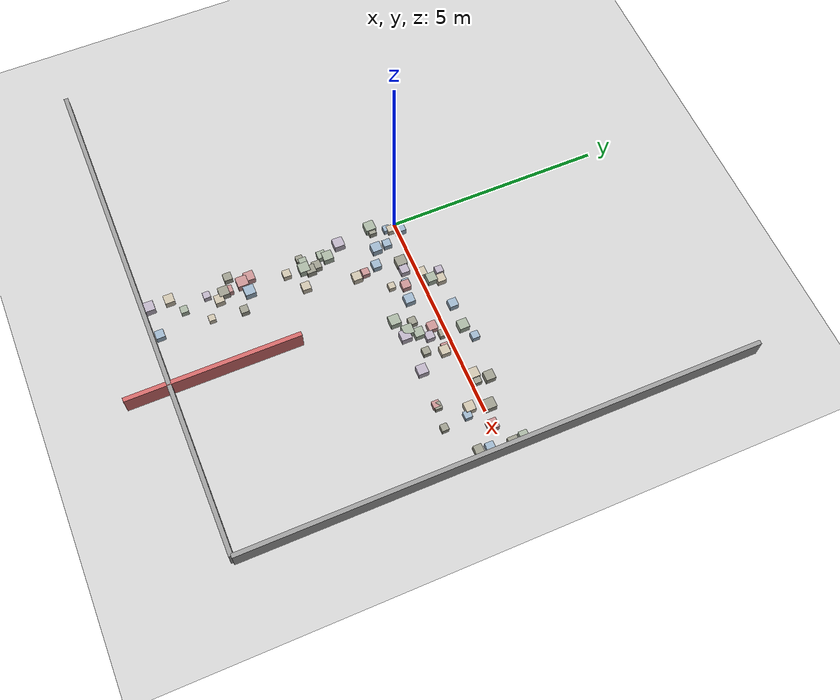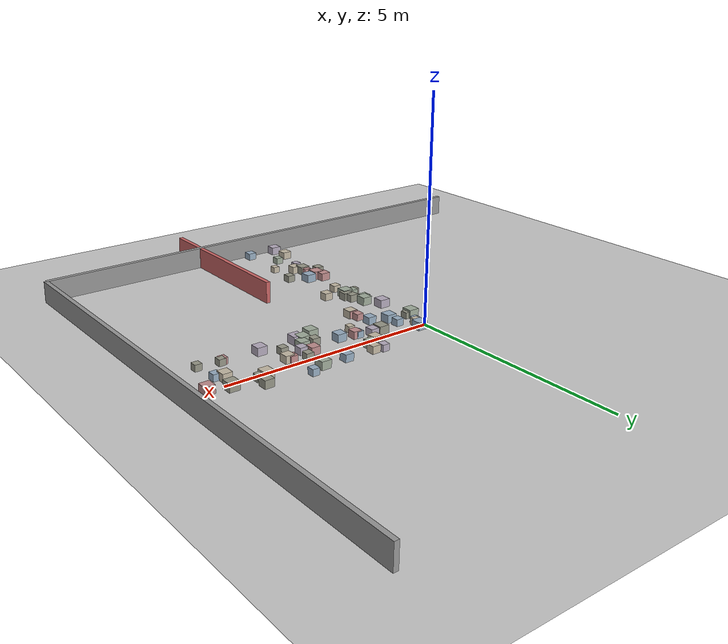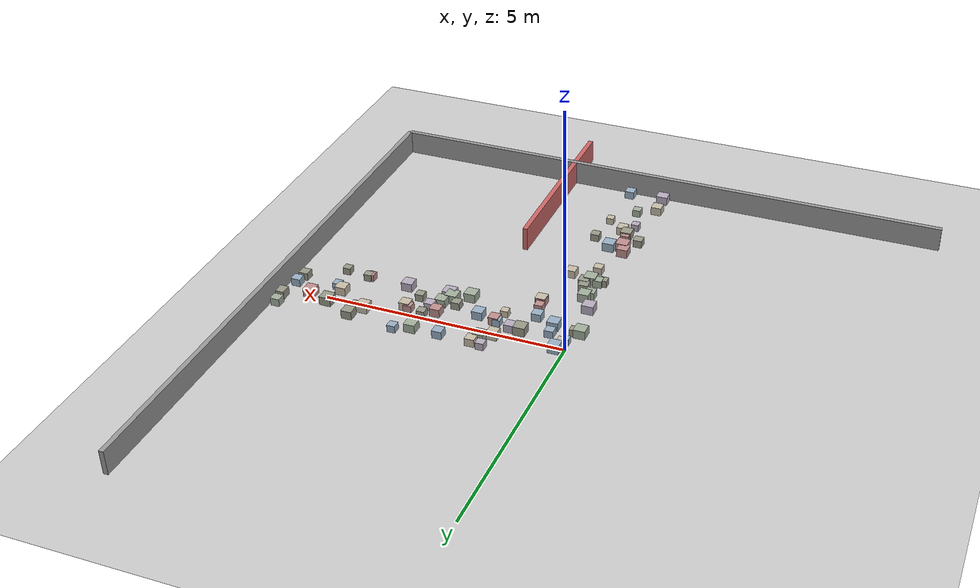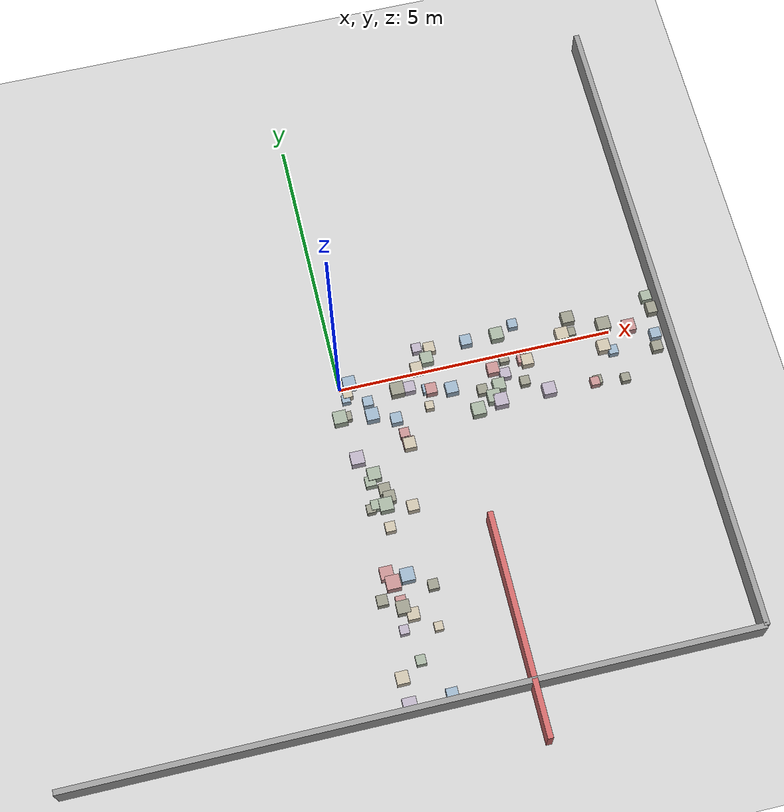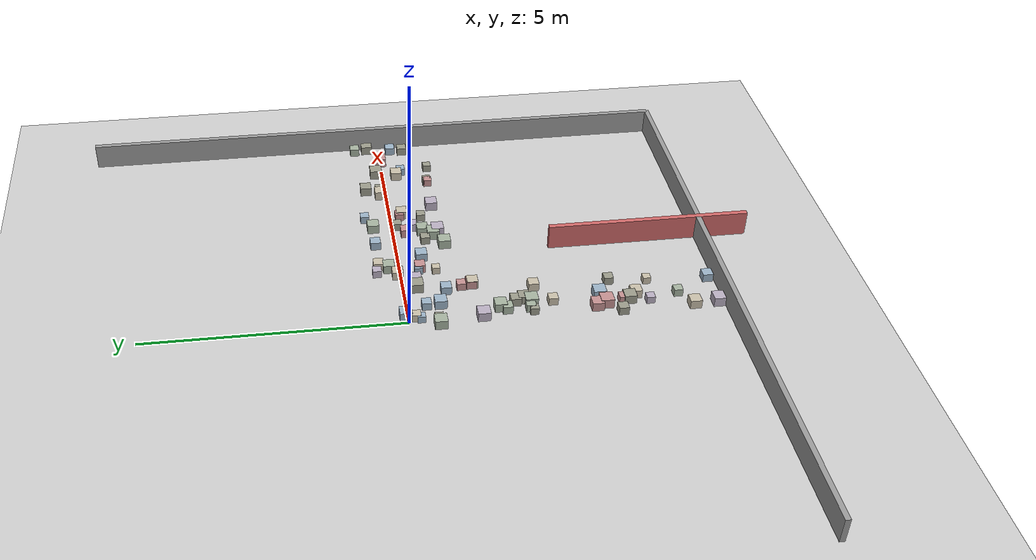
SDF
<sdf version="1.6">
 <world name="small_maze_world">
  <include><uri>model://ground_plane</uri></include>
  <include><uri>model://sun</uri></include>
  <model name="wall_south">
   <static>true</static>
   <pose>0 -6 0.25 0 0 0</pose>
   <link name="link">
    <collision name="collision"><geometry><box><size>12 0.1 0.5</size></box></geometry></collision>
    <visual name="visual">
     <geometry><box><size>12 0.1 0.5</size></box></geometry>
     <material><ambient>0.6 0.6 0.6 1</ambient></material>
    </visual>
   </link>
  </model>
  <model name="wall_east">
   <static>true</static>
   <pose>6 0 0.25 0 0 0</pose>
   <link name="link">
    <collision name="collision"><geometry><box><size>0.1 12 0.5</size></box></geometry></collision>
    <visual name="visual">
     <geometry><box><size>0.1 12 0.5</size></box></geometry>
     <material><ambient>0.6 0.6 0.6 1</ambient></material>
    </visual>
   </link>
  </model>
  <model name="maze_wall_2">
   <static>true</static>
   <pose>2 -5 0.25 0 0 1.5708</pose>
   <link name="link">
    <collision name="collision"><geometry><box><size>4 0.1 0.5</size></box></geometry></collision>
    <visual name="visual">
     <geometry><box><size>4 0.1 0.5</size></box></geometry>
     <material><ambient>0.8 0.4 0.4 1</ambient></material>
    </visual>
   </link>
  </model>
  <model name="box_1">
   <static>false</static>
   <pose>2.75 -0.89 0.05 0 0 0</pose>
   <link name="link">
    <inertial>
     <mass>0.2</mass>
     <inertia><ixx>0.001</ixx><iyy>0.001</iyy><izz>0.001</izz><ixy>0</ixy><ixz>0</ixz><iyz>0</iyz></inertia>
    </inertial>
    <collision name="collision"><geometry><box><size>0.24 0.24 0.24</size></box></geometry></collision>
    <visual name="visual">
     <geometry><box><size>0.24 0.24 0.24</size></box></geometry>
     <material><ambient>0.72 0.68 0.75 1</ambient><diffuse>0.72 0.68 0.75 1</diffuse></material>
    </visual>
   </link>
  </model>
  <model name="box_9">
   <static>false</static>
   <pose>0.94 -1.1 0.05 0 0 0</pose>
   <link name="link">
    <inertial>
     <mass>0.2</mass>
     <inertia><ixx>0.001</ixx><iyy>0.001</iyy><izz>0.001</izz><ixy>0</ixy><ixz>0</ixz><iyz>0</iyz></inertia>
    </inertial>
    <collision name="collision"><geometry><box><size>0.17 0.17 0.17</size></box></geometry></collision>
    <visual name="visual">
     <geometry><box><size>0.17 0.17 0.17</size></box></geometry>
     <material><ambient>0.76 0.56 0.56 1</ambient><diffuse>0.76 0.56 0.56 1</diffuse></material>
    </visual>
   </link>
  </model>
  <model name="box_26">
   <static>false</static>
   <pose>0.33 -4.35 0.05 0 0 0</pose>
   <link name="link">
    <inertial>
     <mass>0.2</mass>
     <inertia><ixx>0.001</ixx><iyy>0.001</iyy><izz>0.001</izz><ixy>0</ixy><ixz>0</ixz><iyz>0</iyz></inertia>
    </inertial>
    <collision name="collision"><geometry><box><size>0.21 0.21 0.21</size></box></geometry></collision>
    <visual name="visual">
     <geometry><box><size>0.21 0.21 0.21</size></box></geometry>
     <material><ambient>0.78 0.74 0.66 1</ambient><diffuse>0.78 0.74 0.66 1</diffuse></material>
    </visual>
   </link>
  </model>
  <model name="box_27">
   <static>false</static>
   <pose>1.65 0.21 0.05 0 0 0</pose>
   <link name="link">
    <inertial>
     <mass>0.2</mass>
     <inertia><ixx>0.001</ixx><iyy>0.001</iyy><izz>0.001</izz><ixy>0</ixy><ixz>0</ixz><iyz>0</iyz></inertia>
    </inertial>
    <collision name="collision"><geometry><box><size>0.22 0.22 0.22</size></box></geometry></collision>
    <visual name="visual">
     <geometry><box><size>0.22 0.22 0.22</size></box></geometry>
     <material><ambient>0.64 0.69 0.62 1</ambient><diffuse>0.64 0.69 0.62 1</diffuse></material>
    </visual>
   </link>
  </model>
  <model name="box_29">
   <static>false</static>
   <pose>3.26 -0.62 0.05 0 0 0</pose>
   <link name="link">
    <inertial>
     <mass>0.2</mass>
     <inertia><ixx>0.001</ixx><iyy>0.001</iyy><izz>0.001</izz><ixy>0</ixy><ixz>0</ixz><iyz>0</iyz></inertia>
    </inertial>
    <collision name="collision"><geometry><box><size>0.17 0.17 0.17</size></box></geometry></collision>
    <visual name="visual">
     <geometry><box><size>0.17 0.17 0.17</size></box></geometry>
     <material><ambient>0.6 0.6 0.54 1</ambient><diffuse>0.6 0.6 0.54 1</diffuse></material>
    </visual>
   </link>
  </model>
  <model name="box_59">
   <static>false</static>
   <pose>4.53 -0.9 0.05 0 0 0</pose>
   <link name="link">
    <inertial>
     <mass>0.2</mass>
     <inertia><ixx>0.001</ixx><iyy>0.001</iyy><izz>0.001</izz><ixy>0</ixy><ixz>0</ixz><iyz>0</iyz></inertia>
    </inertial>
    <collision name="collision"><geometry><box><size>0.16 0.16 0.16</size></box></geometry></collision>
    <visual name="visual">
     <geometry><box><size>0.16 0.16 0.16</size></box></geometry>
     <material><ambient>0.6 0.6 0.54 1</ambient><diffuse>0.6 0.6 0.54 1</diffuse></material>
    </visual>
   </link>
  </model>
  <model name="box_63">
   <static>false</static>
   <pose>2.99 0.38 0.05 0 0 0</pose>
   <link name="link">
    <inertial>
     <mass>0.2</mass>
     <inertia><ixx>0.001</ixx><iyy>0.001</iyy><izz>0.001</izz><ixy>0</ixy><ixz>0</ixz><iyz>0</iyz></inertia>
    </inertial>
    <collision name="collision"><geometry><box><size>0.23 0.23 0.23</size></box></geometry></collision>
    <visual name="visual">
     <geometry><box><size>0.23 0.23 0.23</size></box></geometry>
     <material><ambient>0.64 0.69 0.62 1</ambient><diffuse>0.64 0.69 0.62 1</diffuse></material>
    </visual>
   </link>
  </model>
  <model name="box_72">
   <static>false</static>
   <pose>2.65 -0.79 0.05 0 0 0</pose>
   <link name="link">
    <inertial>
     <mass>0.2</mass>
     <inertia><ixx>0.001</ixx><iyy>0.001</iyy><izz>0.001</izz><ixy>0</ixy><ixz>0</ixz><iyz>0</iyz></inertia>
    </inertial>
    <collision name="collision"><geometry><box><size>0.24 0.24 0.24</size></box></geometry></collision>
    <visual name="visual">
     <geometry><box><size>0.24 0.24 0.24</size></box></geometry>
     <material><ambient>0.64 0.69 0.62 1</ambient><diffuse>0.64 0.69 0.62 1</diffuse></material>
    </visual>
   </link>
  </model>
  <model name="box_73">
   <static>false</static>
   <pose>0.65 -5.83 0.05 0 0 0</pose>
   <link name="link">
    <inertial>
     <mass>0.2</mass>
     <inertia><ixx>0.001</ixx><iyy>0.001</iyy><izz>0.001</izz><ixy>0</ixy><ixz>0</ixz><iyz>0</iyz></inertia>
    </inertial>
    <collision name="collision"><geometry><box><size>0.2 0.2 0.2</size></box></geometry></collision>
    <visual name="visual">
     <geometry><box><size>0.2 0.2 0.2</size></box></geometry>
     <material><ambient>0.6 0.69 0.77 1</ambient><diffuse>0.6 0.69 0.77 1</diffuse></material>
    </visual>
   </link>
  </model>
  <model name="box_89">
   <static>false</static>
   <pose>2.79 -0.59 0.05 0 0 0</pose>
   <link name="link">
    <inertial>
     <mass>0.2</mass>
     <inertia><ixx>0.001</ixx><iyy>0.001</iyy><izz>0.001</izz><ixy>0</ixy><ixz>0</ixz><iyz>0</iyz></inertia>
    </inertial>
    <collision name="collision"><geometry><box><size>0.22 0.22 0.22</size></box></geometry></collision>
    <visual name="visual">
     <geometry><box><size>0.22 0.22 0.22</size></box></geometry>
     <material><ambient>0.64 0.69 0.62 1</ambient><diffuse>0.64 0.69 0.62 1</diffuse></material>
    </visual>
   </link>
  </model>
  <model name="box_90">
   <static>false</static>
   <pose>0.07 -0.23 0.05 0 0 0</pose>
   <link name="link">
    <inertial>
     <mass>0.2</mass>
     <inertia><ixx>0.001</ixx><iyy>0.001</iyy><izz>0.001</izz><ixy>0</ixy><ixz>0</ixz><iyz>0</iyz></inertia>
    </inertial>
    <collision name="collision"><geometry><box><size>0.15 0.15 0.15</size></box></geometry></collision>
    <visual name="visual">
     <geometry><box><size>0.15 0.15 0.15</size></box></geometry>
     <material><ambient>0.6 0.69 0.77 1</ambient><diffuse>0.6 0.69 0.77 1</diffuse></material>
    </visual>
   </link>
  </model>
  <model name="box_93">
   <static>false</static>
   <pose>0.7 -4.65 0.05 0 0 0</pose>
   <link name="link">
    <inertial>
     <mass>0.2</mass>
     <inertia><ixx>0.001</ixx><iyy>0.001</iyy><izz>0.001</izz><ixy>0</ixy><ixz>0</ixz><iyz>0</iyz></inertia>
    </inertial>
    <collision name="collision"><geometry><box><size>0.15 0.15 0.15</size></box></geometry></collision>
    <visual name="visual">
     <geometry><box><size>0.15 0.15 0.15</size></box></geometry>
     <material><ambient>0.78 0.74 0.66 1</ambient><diffuse>0.78 0.74 0.66 1</diffuse></material>
    </visual>
   </link>
  </model>
  <model name="box_104">
   <static>false</static>
   <pose>5.75 -0.51 0.05 0 0 0</pose>
   <link name="link">
    <inertial>
     <mass>0.2</mass>
     <inertia><ixx>0.001</ixx><iyy>0.001</iyy><izz>0.001</izz><ixy>0</ixy><ixz>0</ixz><iyz>0</iyz></inertia>
    </inertial>
    <collision name="collision"><geometry><box><size>0.19 0.19 0.19</size></box></geometry></collision>
    <visual name="visual">
     <geometry><box><size>0.19 0.19 0.19</size></box></geometry>
     <material><ambient>0.6 0.6 0.54 1</ambient><diffuse>0.6 0.6 0.54 1</diffuse></material>
    </visual>
   </link>
  </model>
  <model name="box_106">
   <static>false</static>
   <pose>0.15 -1.86 0.05 0 0 0</pose>
   <link name="link">
    <inertial>
     <mass>0.2</mass>
     <inertia><ixx>0.001</ixx><iyy>0.001</iyy><izz>0.001</izz><ixy>0</ixy><ixz>0</ixz><iyz>0</iyz></inertia>
    </inertial>
    <collision name="collision"><geometry><box><size>0.19 0.19 0.19</size></box></geometry></collision>
    <visual name="visual">
     <geometry><box><size>0.19 0.19 0.19</size></box></geometry>
     <material><ambient>0.64 0.69 0.62 1</ambient><diffuse>0.64 0.69 0.62 1</diffuse></material>
    </visual>
   </link>
  </model>
  <model name="box_116">
   <static>false</static>
   <pose>0.27 -5.15 0.05 0 0 0</pose>
   <link name="link">
    <inertial>
     <mass>0.2</mass>
     <inertia><ixx>0.001</ixx><iyy>0.001</iyy><izz>0.001</izz><ixy>0</ixy><ixz>0</ixz><iyz>0</iyz></inertia>
    </inertial>
    <collision name="collision"><geometry><box><size>0.17 0.17 0.17</size></box></geometry></collision>
    <visual name="visual">
     <geometry><box><size>0.17 0.17 0.17</size></box></geometry>
     <material><ambient>0.64 0.69 0.62 1</ambient><diffuse>0.64 0.69 0.62 1</diffuse></material>
    </visual>
   </link>
  </model>
  <model name="box_117">
   <static>false</static>
   <pose>2.76 -0.26 0.05 0 0 0</pose>
   <link name="link">
    <inertial>
     <mass>0.2</mass>
     <inertia><ixx>0.001</ixx><iyy>0.001</iyy><izz>0.001</izz><ixy>0</ixy><ixz>0</ixz><iyz>0</iyz></inertia>
    </inertial>
    <collision name="collision"><geometry><box><size>0.21 0.21 0.21</size></box></geometry></collision>
    <visual name="visual">
     <geometry><box><size>0.21 0.21 0.21</size></box></geometry>
     <material><ambient>0.76 0.56 0.56 1</ambient><diffuse>0.76 0.56 0.56 1</diffuse></material>
    </visual>
   </link>
  </model>
  <model name="box_119">
   <static>false</static>
   <pose>4.14 0.11 0.05 0 0 0</pose>
   <link name="link">
    <inertial>
     <mass>0.2</mass>
     <inertia><ixx>0.001</ixx><iyy>0.001</iyy><izz>0.001</izz><ixy>0</ixy><ixz>0</ixz><iyz>0</iyz></inertia>
    </inertial>
    <collision name="collision"><geometry><box><size>0.23 0.23 0.23</size></box></geometry></collision>
    <visual name="visual">
     <geometry><box><size>0.23 0.23 0.23</size></box></geometry>
     <material><ambient>0.78 0.74 0.66 1</ambient><diffuse>0.78 0.74 0.66 1</diffuse></material>
    </visual>
   </link>
  </model>
  <model name="box_121">
   <static>false</static>
   <pose>3.32 0.52 0.05 0 0 0</pose>
   <link name="link">
    <inertial>
     <mass>0.2</mass>
     <inertia><ixx>0.001</ixx><iyy>0.001</iyy><izz>0.001</izz><ixy>0</ixy><ixz>0</ixz><iyz>0</iyz></inertia>
    </inertial>
    <collision name="collision"><geometry><box><size>0.17 0.17 0.17</size></box></geometry></collision>
    <visual name="visual">
     <geometry><box><size>0.17 0.17 0.17</size></box></geometry>
     <material><ambient>0.6 0.69 0.77 1</ambient><diffuse>0.6 0.69 0.77 1</diffuse></material>
    </visual>
   </link>
  </model>
  <model name="box_123">
   <static>false</static>
   <pose>0.15 -2.3 0.05 0 0 0</pose>
   <link name="link">
    <inertial>
     <mass>0.2</mass>
     <inertia><ixx>0.001</ixx><iyy>0.001</iyy><izz>0.001</izz><ixy>0</ixy><ixz>0</ixz><iyz>0</iyz></inertia>
    </inertial>
    <collision name="collision"><geometry><box><size>0.18 0.18 0.18</size></box></geometry></collision>
    <visual name="visual">
     <geometry><box><size>0.18 0.18 0.18</size></box></geometry>
     <material><ambient>0.64 0.69 0.62 1</ambient><diffuse>0.64 0.69 0.62 1</diffuse></material>
    </visual>
   </link>
  </model>
  <model name="box_125">
   <static>false</static>
   <pose>3.32 -0.19 0.05 0 0 0</pose>
   <link name="link">
    <inertial>
     <mass>0.2</mass>
     <inertia><ixx>0.001</ixx><iyy>0.001</iyy><izz>0.001</izz><ixy>0</ixy><ixz>0</ixz><iyz>0</iyz></inertia>
    </inertial>
    <collision name="collision"><geometry><box><size>0.17 0.17 0.17</size></box></geometry></collision>
    <visual name="visual">
     <geometry><box><size>0.17 0.17 0.17</size></box></geometry>
     <material><ambient>0.76 0.56 0.56 1</ambient><diffuse>0.76 0.56 0.56 1</diffuse></material>
    </visual>
   </link>
  </model>
  <model name="box_129">
   <static>false</static>
   <pose>-0.1 -5.38 0.05 0 0 0</pose>
   <link name="link">
    <inertial>
     <mass>0.2</mass>
     <inertia><ixx>0.001</ixx><iyy>0.001</iyy><izz>0.001</izz><ixy>0</ixy><ixz>0</ixz><iyz>0</iyz></inertia>
    </inertial>
    <collision name="collision"><geometry><box><size>0.22 0.22 0.22</size></box></geometry></collision>
    <visual name="visual">
     <geometry><box><size>0.22 0.22 0.22</size></box></geometry>
     <material><ambient>0.78 0.74 0.66 1</ambient><diffuse>0.78 0.74 0.66 1</diffuse></material>
    </visual>
   </link>
  </model>
  <model name="box_141">
   <static>false</static>
   <pose>0.98 -1.32 0.05 0 0 0</pose>
   <link name="link">
    <inertial>
     <mass>0.2</mass>
     <inertia><ixx>0.001</ixx><iyy>0.001</iyy><izz>0.001</izz><ixy>0</ixy><ixz>0</ixz><iyz>0</iyz></inertia>
    </inertial>
    <collision name="collision"><geometry><box><size>0.21 0.21 0.21</size></box></geometry></collision>
    <visual name="visual">
     <geometry><box><size>0.21 0.21 0.21</size></box></geometry>
     <material><ambient>0.78 0.74 0.66 1</ambient><diffuse>0.78 0.74 0.66 1</diffuse></material>
    </visual>
   </link>
  </model>
  <model name="box_150">
   <static>false</static>
   <pose>5.83 0.5 0.05 0 0 0</pose>
   <link name="link">
    <inertial>
     <mass>0.2</mass>
     <inertia><ixx>0.001</ixx><iyy>0.001</iyy><izz>0.001</izz><ixy>0</ixy><ixz>0</ixz><iyz>0</iyz></inertia>
    </inertial>
    <collision name="collision"><geometry><box><size>0.19 0.19 0.19</size></box></geometry></collision>
    <visual name="visual">
     <geometry><box><size>0.19 0.19 0.19</size></box></geometry>
     <material><ambient>0.64 0.69 0.62 1</ambient><diffuse>0.64 0.69 0.62 1</diffuse></material>
    </visual>
   </link>
  </model>
  <model name="box_162">
   <static>false</static>
   <pose>3.4 -0.24 0.05 0 0 0</pose>
   <link name="link">
    <inertial>
     <mass>0.2</mass>
     <inertia><ixx>0.001</ixx><iyy>0.001</iyy><izz>0.001</izz><ixy>0</ixy><ixz>0</ixz><iyz>0</iyz></inertia>
    </inertial>
    <collision name="collision"><geometry><box><size>0.21 0.21 0.21</size></box></geometry></collision>
    <visual name="visual">
     <geometry><box><size>0.21 0.21 0.21</size></box></geometry>
     <material><ambient>0.78 0.74 0.66 1</ambient><diffuse>0.78 0.74 0.66 1</diffuse></material>
    </visual>
   </link>
  </model>
  <model name="box_165">
   <static>false</static>
   <pose>-0.08 -5.85 0.05 0 0 0</pose>
   <link name="link">
    <inertial>
     <mass>0.2</mass>
     <inertia><ixx>0.001</ixx><iyy>0.001</iyy><izz>0.001</izz><ixy>0</ixy><ixz>0</ixz><iyz>0</iyz></inertia>
    </inertial>
    <collision name="collision"><geometry><box><size>0.24 0.24 0.24</size></box></geometry></collision>
    <visual name="visual">
     <geometry><box><size>0.24 0.24 0.24</size></box></geometry>
     <material><ambient>0.72 0.68 0.75 1</ambient><diffuse>0.72 0.68 0.75 1</diffuse></material>
    </visual>
   </link>
  </model>
  <model name="box_176">
   <static>false</static>
   <pose>1.0 -0.26 0.05 0 0 0</pose>
   <link name="link">
    <inertial>
     <mass>0.2</mass>
     <inertia><ixx>0.001</ixx><iyy>0.001</iyy><izz>0.001</izz><ixy>0</ixy><ixz>0</ixz><iyz>0</iyz></inertia>
    </inertial>
    <collision name="collision"><geometry><box><size>0.24 0.24 0.24</size></box></geometry></collision>
    <visual name="visual">
     <geometry><box><size>0.24 0.24 0.24</size></box></geometry>
     <material><ambient>0.6 0.6 0.54 1</ambient><diffuse>0.6 0.6 0.54 1</diffuse></material>
    </visual>
   </link>
  </model>
  <model name="box_177">
   <static>false</static>
   <pose>-0.13 -4.0 0.05 0 0 0</pose>
   <link name="link">
    <inertial>
     <mass>0.2</mass>
     <inertia><ixx>0.001</ixx><iyy>0.001</iyy><izz>0.001</izz><ixy>0</ixy><ixz>0</ixz><iyz>0</iyz></inertia>
    </inertial>
    <collision name="collision"><geometry><box><size>0.19 0.19 0.19</size></box></geometry></collision>
    <visual name="visual">
     <geometry><box><size>0.19 0.19 0.19</size></box></geometry>
     <material><ambient>0.6 0.6 0.54 1</ambient><diffuse>0.6 0.6 0.54 1</diffuse></material>
    </visual>
   </link>
  </model>
  <model name="box_183">
   <static>false</static>
   <pose>1.43 0.06 0.05 0 0 0</pose>
   <link name="link">
    <inertial>
     <mass>0.2</mass>
     <inertia><ixx>0.001</ixx><iyy>0.001</iyy><izz>0.001</izz><ixy>0</ixy><ixz>0</ixz><iyz>0</iyz></inertia>
    </inertial>
    <collision name="collision"><geometry><box><size>0.21 0.21 0.21</size></box></geometry></collision>
    <visual name="visual">
     <geometry><box><size>0.21 0.21 0.21</size></box></geometry>
     <material><ambient>0.78 0.74 0.66 1</ambient><diffuse>0.78 0.74 0.66 1</diffuse></material>
    </visual>
   </link>
  </model>
  <model name="box_184">
   <static>false</static>
   <pose>2.48 -0.61 0.05 0 0 0</pose>
   <link name="link">
    <inertial>
     <mass>0.2</mass>
     <inertia><ixx>0.001</ixx><iyy>0.001</iyy><izz>0.001</izz><ixy>0</ixy><ixz>0</ixz><iyz>0</iyz></inertia>
    </inertial>
    <collision name="collision"><geometry><box><size>0.18 0.18 0.18</size></box></geometry></collision>
    <visual name="visual">
     <geometry><box><size>0.18 0.18 0.18</size></box></geometry>
     <material><ambient>0.6 0.6 0.54 1</ambient><diffuse>0.6 0.6 0.54 1</diffuse></material>
    </visual>
   </link>
  </model>
  <model name="box_190">
   <static>false</static>
   <pose>0.02 -1.39 0.05 0 0 0</pose>
   <link name="link">
    <inertial>
     <mass>0.2</mass>
     <inertia><ixx>0.001</ixx><iyy>0.001</iyy><izz>0.001</izz><ixy>0</ixy><ixz>0</ixz><iyz>0</iyz></inertia>
    </inertial>
    <collision name="collision"><geometry><box><size>0.24 0.24 0.24</size></box></geometry></collision>
    <visual name="visual">
     <geometry><box><size>0.24 0.24 0.24</size></box></geometry>
     <material><ambient>0.72 0.68 0.75 1</ambient><diffuse>0.72 0.68 0.75 1</diffuse></material>
    </visual>
   </link>
  </model>
  <model name="box_192">
   <static>false</static>
   <pose>0.77 -2.46 0.05 0 0 0</pose>
   <link name="link">
    <inertial>
     <mass>0.2</mass>
     <inertia><ixx>0.001</ixx><iyy>0.001</iyy><izz>0.001</izz><ixy>0</ixy><ixz>0</ixz><iyz>0</iyz></inertia>
    </inertial>
    <collision name="collision"><geometry><box><size>0.2 0.2 0.2</size></box></geometry></collision>
    <visual name="visual">
     <geometry><box><size>0.2 0.2 0.2</size></box></geometry>
     <material><ambient>0.78 0.74 0.66 1</ambient><diffuse>0.78 0.74 0.66 1</diffuse></material>
    </visual>
   </link>
  </model>
  <model name="box_194">
   <static>false</static>
   <pose>0.18 -4.08 0.05 0 0 0</pose>
   <link name="link">
    <inertial>
     <mass>0.2</mass>
     <inertia><ixx>0.001</ixx><iyy>0.001</iyy><izz>0.001</izz><ixy>0</ixy><ixz>0</ixz><iyz>0</iyz></inertia>
    </inertial>
    <collision name="collision"><geometry><box><size>0.18 0.18 0.18</size></box></geometry></collision>
    <visual name="visual">
     <geometry><box><size>0.18 0.18 0.18</size></box></geometry>
     <material><ambient>0.76 0.56 0.56 1</ambient><diffuse>0.76 0.56 0.56 1</diffuse></material>
    </visual>
   </link>
  </model>
  <model name="box_222">
   <static>false</static>
   <pose>0.3 -2.75 0.05 0 0 0</pose>
   <link name="link">
    <inertial>
     <mass>0.2</mass>
     <inertia><ixx>0.001</ixx><iyy>0.001</iyy><izz>0.001</izz><ixy>0</ixy><ixz>0</ixz><iyz>0</iyz></inertia>
    </inertial>
    <collision name="collision"><geometry><box><size>0.18 0.18 0.18</size></box></geometry></collision>
    <visual name="visual">
     <geometry><box><size>0.18 0.18 0.18</size></box></geometry>
     <material><ambient>0.78 0.74 0.66 1</ambient><diffuse>0.78 0.74 0.66 1</diffuse></material>
    </visual>
   </link>
  </model>
  <model name="box_225">
   <static>false</static>
   <pose>0.44 -0.37 0.05 0 0 0</pose>
   <link name="link">
    <inertial>
     <mass>0.2</mass>
     <inertia><ixx>0.001</ixx><iyy>0.001</iyy><izz>0.001</izz><ixy>0</ixy><ixz>0</ixz><iyz>0</iyz></inertia>
    </inertial>
    <collision name="collision"><geometry><box><size>0.18 0.18 0.18</size></box></geometry></collision>
    <visual name="visual">
     <geometry><box><size>0.18 0.18 0.18</size></box></geometry>
     <material><ambient>0.6 0.69 0.77 1</ambient><diffuse>0.6 0.69 0.77 1</diffuse></material>
    </visual>
   </link>
  </model>
  <model name="box_239">
   <static>false</static>
   <pose>4.81 -0.29 0.05 0 0 0</pose>
   <link name="link">
    <inertial>
     <mass>0.2</mass>
     <inertia><ixx>0.001</ixx><iyy>0.001</iyy><izz>0.001</izz><ixy>0</ixy><ixz>0</ixz><iyz>0</iyz></inertia>
    </inertial>
    <collision name="collision"><geometry><box><size>0.22 0.22 0.22</size></box></geometry></collision>
    <visual name="visual">
     <geometry><box><size>0.22 0.22 0.22</size></box></geometry>
     <material><ambient>0.78 0.74 0.66 1</ambient><diffuse>0.78 0.74 0.66 1</diffuse></material>
    </visual>
   </link>
  </model>
  <model name="box_244">
   <static>false</static>
   <pose>0.78 -3.92 0.05 0 0 0</pose>
   <link name="link">
    <inertial>
     <mass>0.2</mass>
     <inertia><ixx>0.001</ixx><iyy>0.001</iyy><izz>0.001</izz><ixy>0</ixy><ixz>0</ixz><iyz>0</iyz></inertia>
    </inertial>
    <collision name="collision"><geometry><box><size>0.18 0.18 0.18</size></box></geometry></collision>
    <visual name="visual">
     <geometry><box><size>0.18 0.18 0.18</size></box></geometry>
     <material><ambient>0.6 0.6 0.54 1</ambient><diffuse>0.6 0.6 0.54 1</diffuse></material>
    </visual>
   </link>
  </model>
  <model name="box_254">
   <static>false</static>
   <pose>0.12 -3.74 0.05 0 0 0</pose>
   <link name="link">
    <inertial>
     <mass>0.2</mass>
     <inertia><ixx>0.001</ixx><iyy>0.001</iyy><izz>0.001</izz><ixy>0</ixy><ixz>0</ixz><iyz>0</iyz></inertia>
    </inertial>
    <collision name="collision"><geometry><box><size>0.25 0.25 0.25</size></box></geometry></collision>
    <visual name="visual">
     <geometry><box><size>0.25 0.25 0.25</size></box></geometry>
     <material><ambient>0.76 0.56 0.56 1</ambient><diffuse>0.76 0.56 0.56 1</diffuse></material>
    </visual>
   </link>
  </model>
  <model name="box_256">
   <static>false</static>
   <pose>1.59 -0.39 0.05 0 0 0</pose>
   <link name="link">
    <inertial>
     <mass>0.2</mass>
     <inertia><ixx>0.001</ixx><iyy>0.001</iyy><izz>0.001</izz><ixy>0</ixy><ixz>0</ixz><iyz>0</iyz></inertia>
    </inertial>
    <collision name="collision"><geometry><box><size>0.2 0.2 0.2</size></box></geometry></collision>
    <visual name="visual">
     <geometry><box><size>0.2 0.2 0.2</size></box></geometry>
     <material><ambient>0.76 0.56 0.56 1</ambient><diffuse>0.76 0.56 0.56 1</diffuse></material>
    </visual>
   </link>
  </model>
  <model name="box_259">
   <static>false</static>
   <pose>4.32 0.4 0.05 0 0 0</pose>
   <link name="link">
    <inertial>
     <mass>0.2</mass>
     <inertia><ixx>0.001</ixx><iyy>0.001</iyy><izz>0.001</izz><ixy>0</ixy><ixz>0</ixz><iyz>0</iyz></inertia>
    </inertial>
    <collision name="collision"><geometry><box><size>0.22 0.22 0.22</size></box></geometry></collision>
    <visual name="visual">
     <geometry><box><size>0.22 0.22 0.22</size></box></geometry>
     <material><ambient>0.6 0.6 0.54 1</ambient><diffuse>0.6 0.6 0.54 1</diffuse></material>
    </visual>
   </link>
  </model>
  <model name="box_263">
   <static>false</static>
   <pose>2.32 -0.97 0.05 0 0 0</pose>
   <link name="link">
    <inertial>
     <mass>0.2</mass>
     <inertia><ixx>0.001</ixx><iyy>0.001</iyy><izz>0.001</izz><ixy>0</ixy><ixz>0</ixz><iyz>0</iyz></inertia>
    </inertial>
    <collision name="collision"><geometry><box><size>0.24 0.24 0.24</size></box></geometry></collision>
    <visual name="visual">
     <geometry><box><size>0.24 0.24 0.24</size></box></geometry>
     <material><ambient>0.64 0.69 0.62 1</ambient><diffuse>0.64 0.69 0.62 1</diffuse></material>
    </visual>
   </link>
  </model>
  <model name="box_269">
   <static>false</static>
   <pose>0.05 -3.55 0.05 0 0 0</pose>
   <link name="link">
    <inertial>
     <mass>0.2</mass>
     <inertia><ixx>0.001</ixx><iyy>0.001</iyy><izz>0.001</izz><ixy>0</ixy><ixz>0</ixz><iyz>0</iyz></inertia>
    </inertial>
    <collision name="collision"><geometry><box><size>0.23 0.23 0.23</size></box></geometry></collision>
    <visual name="visual">
     <geometry><box><size>0.23 0.23 0.23</size></box></geometry>
     <material><ambient>0.76 0.56 0.56 1</ambient><diffuse>0.76 0.56 0.56 1</diffuse></material>
    </visual>
   </link>
  </model>
  <model name="box_275">
   <static>false</static>
   <pose>5.79 -0.26 0.05 0 0 0</pose>
   <link name="link">
    <inertial>
     <mass>0.2</mass>
     <inertia><ixx>0.001</ixx><iyy>0.001</iyy><izz>0.001</izz><ixy>0</ixy><ixz>0</ixz><iyz>0</iyz></inertia>
    </inertial>
    <collision name="collision"><geometry><box><size>0.19 0.19 0.19</size></box></geometry></collision>
    <visual name="visual">
     <geometry><box><size>0.19 0.19 0.19</size></box></geometry>
     <material><ambient>0.6 0.69 0.77 1</ambient><diffuse>0.6 0.69 0.77 1</diffuse></material>
    </visual>
   </link>
  </model>
  <model name="box_276">
   <static>false</static>
   <pose>0.97 -1.3 0.05 0 0 0</pose>
   <link name="link">
    <inertial>
     <mass>0.2</mass>
     <inertia><ixx>0.001</ixx><iyy>0.001</iyy><izz>0.001</izz><ixy>0</ixy><ixz>0</ixz><iyz>0</iyz></inertia>
    </inertial>
    <collision name="collision"><geometry><box><size>0.2 0.2 0.2</size></box></geometry></collision>
    <visual name="visual">
     <geometry><box><size>0.2 0.2 0.2</size></box></geometry>
     <material><ambient>0.76 0.56 0.56 1</ambient><diffuse>0.76 0.56 0.56 1</diffuse></material>
    </visual>
   </link>
  </model>
  <model name="box_286">
   <static>false</static>
   <pose>5.36 -0.01 0.05 0 0 0</pose>
   <link name="link">
    <inertial>
     <mass>0.2</mass>
     <inertia><ixx>0.001</ixx><iyy>0.001</iyy><izz>0.001</izz><ixy>0</ixy><ixz>0</ixz><iyz>0</iyz></inertia>
    </inertial>
    <collision name="collision"><geometry><box><size>0.23 0.23 0.23</size></box></geometry></collision>
    <visual name="visual">
     <geometry><box><size>0.23 0.23 0.23</size></box></geometry>
     <material><ambient>0.76 0.56 0.56 1</ambient><diffuse>0.76 0.56 0.56 1</diffuse></material>
    </visual>
   </link>
  </model>
  <model name="box_288">
   <static>false</static>
   <pose>3.0 -0.11 0.05 0 0 0</pose>
   <link name="link">
    <inertial>
     <mass>0.2</mass>
     <inertia><ixx>0.001</ixx><iyy>0.001</iyy><izz>0.001</izz><ixy>0</ixy><ixz>0</ixz><iyz>0</iyz></inertia>
    </inertial>
    <collision name="collision"><geometry><box><size>0.17 0.17 0.17</size></box></geometry></collision>
    <visual name="visual">
     <geometry><box><size>0.17 0.17 0.17</size></box></geometry>
     <material><ambient>0.6 0.6 0.54 1</ambient><diffuse>0.6 0.6 0.54 1</diffuse></material>
    </visual>
   </link>
  </model>
  <model name="box_292">
   <static>false</static>
   <pose>0.41 -2.21 0.05 0 0 0</pose>
   <link name="link">
    <inertial>
     <mass>0.2</mass>
     <inertia><ixx>0.001</ixx><iyy>0.001</iyy><izz>0.001</izz><ixy>0</ixy><ixz>0</ixz><iyz>0</iyz></inertia>
    </inertial>
    <collision name="collision"><geometry><box><size>0.21 0.21 0.21</size></box></geometry></collision>
    <visual name="visual">
     <geometry><box><size>0.21 0.21 0.21</size></box></geometry>
     <material><ambient>0.6 0.6 0.54 1</ambient><diffuse>0.6 0.6 0.54 1</diffuse></material>
    </visual>
   </link>
  </model>
  <model name="box_294">
   <static>false</static>
   <pose>1.22 -0.27 0.05 0 0 0</pose>
   <link name="link">
    <inertial>
     <mass>0.2</mass>
     <inertia><ixx>0.001</ixx><iyy>0.001</iyy><izz>0.001</izz><ixy>0</ixy><ixz>0</ixz><iyz>0</iyz></inertia>
    </inertial>
    <collision name="collision"><geometry><box><size>0.2 0.2 0.2</size></box></geometry></collision>
    <visual name="visual">
     <geometry><box><size>0.2 0.2 0.2</size></box></geometry>
     <material><ambient>0.72 0.68 0.75 1</ambient><diffuse>0.72 0.68 0.75 1</diffuse></material>
    </visual>
   </link>
  </model>
  <model name="box_299">
   <static>false</static>
   <pose>0.05 -2.35 0.05 0 0 0</pose>
   <link name="link">
    <inertial>
     <mass>0.2</mass>
     <inertia><ixx>0.001</ixx><iyy>0.001</iyy><izz>0.001</izz><ixy>0</ixy><ixz>0</ixz><iyz>0</iyz></inertia>
    </inertial>
    <collision name="collision"><geometry><box><size>0.16 0.16 0.16</size></box></geometry></collision>
    <visual name="visual">
     <geometry><box><size>0.16 0.16 0.16</size></box></geometry>
     <material><ambient>0.6 0.6 0.54 1</ambient><diffuse>0.6 0.6 0.54 1</diffuse></material>
    </visual>
   </link>
  </model>
  <model name="box_302">
   <static>false</static>
   <pose>4.92 0.13 0.05 0 0 0</pose>
   <link name="link">
    <inertial>
     <mass>0.2</mass>
     <inertia><ixx>0.001</ixx><iyy>0.001</iyy><izz>0.001</izz><ixy>0</ixy><ixz>0</ixz><iyz>0</iyz></inertia>
    </inertial>
    <collision name="collision"><geometry><box><size>0.24 0.24 0.24</size></box></geometry></collision>
    <visual name="visual">
     <geometry><box><size>0.24 0.24 0.24</size></box></geometry>
     <material><ambient>0.6 0.6 0.54 1</ambient><diffuse>0.6 0.6 0.54 1</diffuse></material>
    </visual>
   </link>
  </model>
  <model name="box_306">
   <static>false</static>
   <pose>0.02 -0.56 0.05 0 0 0</pose>
   <link name="link">
    <inertial>
     <mass>0.2</mass>
     <inertia><ixx>0.001</ixx><iyy>0.001</iyy><izz>0.001</izz><ixy>0</ixy><ixz>0</ixz><iyz>0</iyz></inertia>
    </inertial>
    <collision name="collision"><geometry><box><size>0.16 0.16 0.16</size></box></geometry></collision>
    <visual name="visual">
     <geometry><box><size>0.16 0.16 0.16</size></box></geometry>
     <material><ambient>0.6 0.6 0.54 1</ambient><diffuse>0.6 0.6 0.54 1</diffuse></material>
    </visual>
   </link>
  </model>
  <model name="box_313">
   <static>false</static>
   <pose>0.46 -0.64 0.05 0 0 0</pose>
   <link name="link">
    <inertial>
     <mass>0.2</mass>
     <inertia><ixx>0.001</ixx><iyy>0.001</iyy><izz>0.001</izz><ixy>0</ixy><ixz>0</ixz><iyz>0</iyz></inertia>
    </inertial>
    <collision name="collision"><geometry><box><size>0.23 0.23 0.23</size></box></geometry></collision>
    <visual name="visual">
     <geometry><box><size>0.23 0.23 0.23</size></box></geometry>
     <material><ambient>0.6 0.69 0.77 1</ambient><diffuse>0.6 0.69 0.77 1</diffuse></material>
    </visual>
   </link>
  </model>
  <model name="box_315">
   <static>false</static>
   <pose>0.39 -3.66 0.05 0 0 0</pose>
   <link name="link">
    <inertial>
     <mass>0.2</mass>
     <inertia><ixx>0.001</ixx><iyy>0.001</iyy><izz>0.001</izz><ixy>0</ixy><ixz>0</ixz><iyz>0</iyz></inertia>
    </inertial>
    <collision name="collision"><geometry><box><size>0.24 0.24 0.24</size></box></geometry></collision>
    <visual name="visual">
     <geometry><box><size>0.24 0.24 0.24</size></box></geometry>
     <material><ambient>0.6 0.69 0.77 1</ambient><diffuse>0.6 0.69 0.77 1</diffuse></material>
    </visual>
   </link>
  </model>
  <model name="box_317">
   <static>false</static>
   <pose>0.19 -4.2 0.05 0 0 0</pose>
   <link name="link">
    <inertial>
     <mass>0.2</mass>
     <inertia><ixx>0.001</ixx><iyy>0.001</iyy><izz>0.001</izz><ixy>0</ixy><ixz>0</ixz><iyz>0</iyz></inertia>
    </inertial>
    <collision name="collision"><geometry><box><size>0.23 0.23 0.23</size></box></geometry></collision>
    <visual name="visual">
     <geometry><box><size>0.23 0.23 0.23</size></box></geometry>
     <material><ambient>0.6 0.6 0.54 1</ambient><diffuse>0.6 0.6 0.54 1</diffuse></material>
    </visual>
   </link>
  </model>
  <model name="box_324">
   <static>false</static>
   <pose>0.32 -2.34 0.05 0 0 0</pose>
   <link name="link">
    <inertial>
     <mass>0.2</mass>
     <inertia><ixx>0.001</ixx><iyy>0.001</iyy><izz>0.001</izz><ixy>0</ixy><ixz>0</ixz><iyz>0</iyz></inertia>
    </inertial>
    <collision name="collision"><geometry><box><size>0.24 0.24 0.24</size></box></geometry></collision>
    <visual name="visual">
     <geometry><box><size>0.24 0.24 0.24</size></box></geometry>
     <material><ambient>0.64 0.69 0.62 1</ambient><diffuse>0.64 0.69 0.62 1</diffuse></material>
    </visual>
   </link>
  </model>
  <model name="box_329">
   <static>false</static>
   <pose>0.24 -1.74 0.05 0 0 0</pose>
   <link name="link">
    <inertial>
     <mass>0.2</mass>
     <inertia><ixx>0.001</ixx><iyy>0.001</iyy><izz>0.001</izz><ixy>0</ixy><ixz>0</ixz><iyz>0</iyz></inertia>
    </inertial>
    <collision name="collision"><geometry><box><size>0.23 0.23 0.23</size></box></geometry></collision>
    <visual name="visual">
     <geometry><box><size>0.23 0.23 0.23</size></box></geometry>
     <material><ambient>0.64 0.69 0.62 1</ambient><diffuse>0.64 0.69 0.62 1</diffuse></material>
    </visual>
   </link>
  </model>
  <model name="box_337">
   <static>false</static>
   <pose>2.95 -0.4 0.05 0 0 0</pose>
   <link name="link">
    <inertial>
     <mass>0.2</mass>
     <inertia><ixx>0.001</ixx><iyy>0.001</iyy><izz>0.001</izz><ixy>0</ixy><ixz>0</ixz><iyz>0</iyz></inertia>
    </inertial>
    <collision name="collision"><geometry><box><size>0.19 0.19 0.19</size></box></geometry></collision>
    <visual name="visual">
     <geometry><box><size>0.19 0.19 0.19</size></box></geometry>
     <material><ambient>0.72 0.68 0.75 1</ambient><diffuse>0.72 0.68 0.75 1</diffuse></material>
    </visual>
   </link>
  </model>
  <model name="box_338">
   <static>false</static>
   <pose>4.96 -0.4 0.05 0 0 0</pose>
   <link name="link">
    <inertial>
     <mass>0.2</mass>
     <inertia><ixx>0.001</ixx><iyy>0.001</iyy><izz>0.001</izz><ixy>0</ixy><ixz>0</ixz><iyz>0</iyz></inertia>
    </inertial>
    <collision name="collision"><geometry><box><size>0.17 0.17 0.17</size></box></geometry></collision>
    <visual name="visual">
     <geometry><box><size>0.17 0.17 0.17</size></box></geometry>
     <material><ambient>0.6 0.69 0.77 1</ambient><diffuse>0.6 0.69 0.77 1</diffuse></material>
    </visual>
   </link>
  </model>
  <model name="box_339">
   <static>false</static>
   <pose>1.52 0.45 0.05 0 0 0</pose>
   <link name="link">
    <inertial>
     <mass>0.2</mass>
     <inertia><ixx>0.001</ixx><iyy>0.001</iyy><izz>0.001</izz><ixy>0</ixy><ixz>0</ixz><iyz>0</iyz></inertia>
    </inertial>
    <collision name="collision"><geometry><box><size>0.17 0.17 0.17</size></box></geometry></collision>
    <visual name="visual">
     <geometry><box><size>0.17 0.17 0.17</size></box></geometry>
     <material><ambient>0.72 0.68 0.75 1</ambient><diffuse>0.72 0.68 0.75 1</diffuse></material>
    </visual>
   </link>
  </model>
  <model name="box_345">
   <static>false</static>
   <pose>-0.11 -0.57 0.05 0 0 0</pose>
   <link name="link">
    <inertial>
     <mass>0.2</mass>
     <inertia><ixx>0.001</ixx><iyy>0.001</iyy><izz>0.001</izz><ixy>0</ixy><ixz>0</ixz><iyz>0</iyz></inertia>
    </inertial>
    <collision name="collision"><geometry><box><size>0.24 0.24 0.24</size></box></geometry></collision>
    <visual name="visual">
     <geometry><box><size>0.24 0.24 0.24</size></box></geometry>
     <material><ambient>0.64 0.69 0.62 1</ambient><diffuse>0.64 0.69 0.62 1</diffuse></material>
    </visual>
   </link>
  </model>
  <model name="box_348">
   <static>false</static>
   <pose>5.88 0.24 0.05 0 0 0</pose>
   <link name="link">
    <inertial>
     <mass>0.2</mass>
     <inertia><ixx>0.001</ixx><iyy>0.001</iyy><izz>0.001</izz><ixy>0</ixy><ixz>0</ixz><iyz>0</iyz></inertia>
    </inertial>
    <collision name="collision"><geometry><box><size>0.22 0.22 0.22</size></box></geometry></collision>
    <visual name="visual">
     <geometry><box><size>0.22 0.22 0.22</size></box></geometry>
     <material><ambient>0.6 0.6 0.54 1</ambient><diffuse>0.6 0.6 0.54 1</diffuse></material>
    </visual>
   </link>
  </model>
  <model name="box_363">
   <static>false</static>
   <pose>1.52 -0.36 0.05 0 0 0</pose>
   <link name="link">
    <inertial>
     <mass>0.2</mass>
     <inertia><ixx>0.001</ixx><iyy>0.001</iyy><izz>0.001</izz><ixy>0</ixy><ixz>0</ixz><iyz>0</iyz></inertia>
    </inertial>
    <collision name="collision"><geometry><box><size>0.16 0.16 0.16</size></box></geometry></collision>
    <visual name="visual">
     <geometry><box><size>0.16 0.16 0.16</size></box></geometry>
     <material><ambient>0.6 0.69 0.77 1</ambient><diffuse>0.6 0.69 0.77 1</diffuse></material>
    </visual>
   </link>
  </model>
  <model name="box_368">
   <static>false</static>
   <pose>1.49 -0.69 0.05 0 0 0</pose>
   <link name="link">
    <inertial>
     <mass>0.2</mass>
     <inertia><ixx>0.001</ixx><iyy>0.001</iyy><izz>0.001</izz><ixy>0</ixy><ixz>0</ixz><iyz>0</iyz></inertia>
    </inertial>
    <collision name="collision"><geometry><box><size>0.15 0.15 0.15</size></box></geometry></collision>
    <visual name="visual">
     <geometry><box><size>0.15 0.15 0.15</size></box></geometry>
     <material><ambient>0.78 0.74 0.66 1</ambient><diffuse>0.78 0.74 0.66 1</diffuse></material>
    </visual>
   </link>
  </model>
  <model name="box_371">
   <static>false</static>
   <pose>4.31 0.12 0.05 0 0 0</pose>
   <link name="link">
    <inertial>
     <mass>0.2</mass>
     <inertia><ixx>0.001</ixx><iyy>0.001</iyy><izz>0.001</izz><ixy>0</ixy><ixz>0</ixz><iyz>0</iyz></inertia>
    </inertial>
    <collision name="collision"><geometry><box><size>0.16 0.16 0.16</size></box></geometry></collision>
    <visual name="visual">
     <geometry><box><size>0.16 0.16 0.16</size></box></geometry>
     <material><ambient>0.6 0.6 0.54 1</ambient><diffuse>0.6 0.6 0.54 1</diffuse></material>
    </visual>
   </link>
  </model>
  <model name="box_373">
   <static>false</static>
   <pose>0.36 -2.05 0.05 0 0 0</pose>
   <link name="link">
    <inertial>
     <mass>0.2</mass>
     <inertia><ixx>0.001</ixx><iyy>0.001</iyy><izz>0.001</izz><ixy>0</ixy><ixz>0</ixz><iyz>0</iyz></inertia>
    </inertial>
    <collision name="collision"><geometry><box><size>0.2 0.2 0.2</size></box></geometry></collision>
    <visual name="visual">
     <geometry><box><size>0.2 0.2 0.2</size></box></geometry>
     <material><ambient>0.6 0.6 0.54 1</ambient><diffuse>0.6 0.6 0.54 1</diffuse></material>
    </visual>
   </link>
  </model>
  <model name="box_383">
   <static>false</static>
   <pose>1.95 -0.46 0.05 0 0 0</pose>
   <link name="link">
    <inertial>
     <mass>0.2</mass>
     <inertia><ixx>0.001</ixx><iyy>0.001</iyy><izz>0.001</izz><ixy>0</ixy><ixz>0</ixz><iyz>0</iyz></inertia>
    </inertial>
    <collision name="collision"><geometry><box><size>0.22 0.22 0.22</size></box></geometry></collision>
    <visual name="visual">
     <geometry><box><size>0.22 0.22 0.22</size></box></geometry>
     <material><ambient>0.6 0.69 0.77 1</ambient><diffuse>0.6 0.69 0.77 1</diffuse></material>
    </visual>
   </link>
  </model>
  <model name="box_385">
   <static>false</static>
   <pose>1.74 0.4 0.05 0 0 0</pose>
   <link name="link">
    <inertial>
     <mass>0.2</mass>
     <inertia><ixx>0.001</ixx><iyy>0.001</iyy><izz>0.001</izz><ixy>0</ixy><ixz>0</ixz><iyz>0</iyz></inertia>
    </inertial>
    <collision name="collision"><geometry><box><size>0.2 0.2 0.2</size></box></geometry></collision>
    <visual name="visual">
     <geometry><box><size>0.2 0.2 0.2</size></box></geometry>
     <material><ambient>0.78 0.74 0.66 1</ambient><diffuse>0.78 0.74 0.66 1</diffuse></material>
    </visual>
   </link>
  </model>
  <model name="box_391">
   <static>false</static>
   <pose>3.64 -0.88 0.05 0 0 0</pose>
   <link name="link">
    <inertial>
     <mass>0.2</mass>
     <inertia><ixx>0.001</ixx><iyy>0.001</iyy><izz>0.001</izz><ixy>0</ixy><ixz>0</ixz><iyz>0</iyz></inertia>
    </inertial>
    <collision name="collision"><geometry><box><size>0.23 0.23 0.23</size></box></geometry></collision>
    <visual name="visual">
     <geometry><box><size>0.23 0.23 0.23</size></box></geometry>
     <material><ambient>0.72 0.68 0.75 1</ambient><diffuse>0.72 0.68 0.75 1</diffuse></material>
    </visual>
   </link>
  </model>
  <model name="box_403">
   <static>false</static>
   <pose>0.12 -0.14 0.05 0 0 0</pose>
   <link name="link">
    <inertial>
     <mass>0.2</mass>
     <inertia><ixx>0.001</ixx><iyy>0.001</iyy><izz>0.001</izz><ixy>0</ixy><ixz>0</ixz><iyz>0</iyz></inertia>
    </inertial>
    <collision name="collision"><geometry><box><size>0.17 0.17 0.17</size></box></geometry></collision>
    <visual name="visual">
     <geometry><box><size>0.17 0.17 0.17</size></box></geometry>
     <material><ambient>0.78 0.74 0.66 1</ambient><diffuse>0.78 0.74 0.66 1</diffuse></material>
    </visual>
   </link>
  </model>
  <model name="box_409">
   <static>false</static>
   <pose>0.19 0.05 0.05 0 0 0</pose>
   <link name="link">
    <inertial>
     <mass>0.2</mass>
     <inertia><ixx>0.001</ixx><iyy>0.001</iyy><izz>0.001</izz><ixy>0</ixy><ixz>0</ixz><iyz>0</iyz></inertia>
    </inertial>
    <collision name="collision"><geometry><box><size>0.23 0.23 0.23</size></box></geometry></collision>
    <visual name="visual">
     <geometry><box><size>0.23 0.23 0.23</size></box></geometry>
     <material><ambient>0.6 0.69 0.77 1</ambient><diffuse>0.6 0.69 0.77 1</diffuse></material>
    </visual>
   </link>
  </model>
  <model name="box_414">
   <static>false</static>
   <pose>0.86 -0.8 0.05 0 0 0</pose>
   <link name="link">
    <inertial>
     <mass>0.2</mass>
     <inertia><ixx>0.001</ixx><iyy>0.001</iyy><izz>0.001</izz><ixy>0</ixy><ixz>0</ixz><iyz>0</iyz></inertia>
    </inertial>
    <collision name="collision"><geometry><box><size>0.2 0.2 0.2</size></box></geometry></collision>
    <visual name="visual">
     <geometry><box><size>0.2 0.2 0.2</size></box></geometry>
     <material><ambient>0.6 0.69 0.77 1</ambient><diffuse>0.6 0.69 0.77 1</diffuse></material>
    </visual>
   </link>
  </model>
  <model name="box_415">
   <static>false</static>
   <pose>4.48 -0.92 0.05 0 0 0</pose>
   <link name="link">
    <inertial>
     <mass>0.2</mass>
     <inertia><ixx>0.001</ixx><iyy>0.001</iyy><izz>0.001</izz><ixy>0</ixy><ixz>0</ixz><iyz>0</iyz></inertia>
    </inertial>
    <collision name="collision"><geometry><box><size>0.16 0.16 0.16</size></box></geometry></collision>
    <visual name="visual">
     <geometry><box><size>0.16 0.16 0.16</size></box></geometry>
     <material><ambient>0.76 0.56 0.56 1</ambient><diffuse>0.76 0.56 0.56 1</diffuse></material>
    </visual>
   </link>
  </model>
  <model name="box_416">
   <static>false</static>
   <pose>5.03 -0.97 0.05 0 0 0</pose>
   <link name="link">
    <inertial>
     <mass>0.2</mass>
     <inertia><ixx>0.001</ixx><iyy>0.001</iyy><izz>0.001</izz><ixy>0</ixy><ixz>0</ixz><iyz>0</iyz></inertia>
    </inertial>
    <collision name="collision"><geometry><box><size>0.16 0.16 0.16</size></box></geometry></collision>
    <visual name="visual">
     <geometry><box><size>0.16 0.16 0.16</size></box></geometry>
     <material><ambient>0.6 0.6 0.54 1</ambient><diffuse>0.6 0.6 0.54 1</diffuse></material>
    </visual>
   </link>
  </model>
  <model name="box_444">
   <static>false</static>
   <pose>2.42 0.39 0.05 0 0 0</pose>
   <link name="link">
    <inertial>
     <mass>0.2</mass>
     <inertia><ixx>0.001</ixx><iyy>0.001</iyy><izz>0.001</izz><ixy>0</ixy><ixz>0</ixz><iyz>0</iyz></inertia>
    </inertial>
    <collision name="collision"><geometry><box><size>0.2 0.2 0.2</size></box></geometry></collision>
    <visual name="visual">
     <geometry><box><size>0.2 0.2 0.2</size></box></geometry>
     <material><ambient>0.6 0.69 0.77 1</ambient><diffuse>0.6 0.69 0.77 1</diffuse></material>
    </visual>
   </link>
  </model>
  <model name="box_449">
   <static>false</static>
   <pose>0.12 -4.58 0.05 0 0 0</pose>
   <link name="link">
    <inertial>
     <mass>0.2</mass>
     <inertia><ixx>0.001</ixx><iyy>0.001</iyy><izz>0.001</izz><ixy>0</ixy><ixz>0</ixz><iyz>0</iyz></inertia>
    </inertial>
    <collision name="collision"><geometry><box><size>0.16 0.16 0.16</size></box></geometry></collision>
    <visual name="visual">
     <geometry><box><size>0.16 0.16 0.16</size></box></geometry>
     <material><ambient>0.72 0.68 0.75 1</ambient><diffuse>0.72 0.68 0.75 1</diffuse></material>
    </visual>
   </link>
  </model>
 </world>
</sdf>
